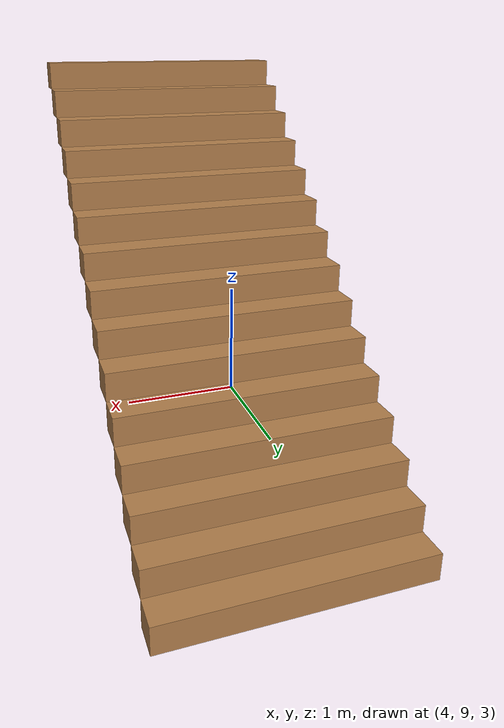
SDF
<sdf version="1.6">
 <model name="add_competition_building">
  <link name="Stairs_20">
   <visual name="Stairs_20_Visual_11">
    <pose>4.54528 9.33874 5.3 0 -0 0</pose>
    <geometry><box><size>1.85 0.217681 0.2</size></box></geometry>
    <material>
     <script><uri>file://media/materials/scripts/gazebo.material</uri><name>Gazebo/WoodPallet</name></script>
     <ambient>1 1 1 1</ambient>
     <shader type="pixel"/>
    </material>
    <meta><layer>1</layer></meta>
   </visual>
   <visual name="Stairs_20_Visual_2">
    <pose>4.54528 11.2979 3.5 0 -0 0</pose>
    <geometry><box><size>1.85 0.217681 0.2</size></box></geometry>
    <material>
     <script><uri>file://media/materials/scripts/gazebo.material</uri><name>Gazebo/WoodPallet</name></script>
     <ambient>1 1 1 1</ambient>
     <shader type="pixel"/>
    </material>
    <meta><layer>1</layer></meta>
   </visual>
   <visual name="Stairs_20_Visual_6">
    <pose>4.54528 10.4271 4.3 0 -0 0</pose>
    <geometry><box><size>1.85 0.217681 0.2</size></box></geometry>
    <material>
     <script><uri>file://media/materials/scripts/gazebo.material</uri><name>Gazebo/WoodPallet</name></script>
     <ambient>1 1 1 1</ambient>
     <shader type="pixel"/>
    </material>
    <meta><layer>1</layer></meta>
   </visual>
   <visual name="Stairs_20_Visual_4">
    <pose>4.54528 10.8625 3.9 0 -0 0</pose>
    <geometry><box><size>1.85 0.217681 0.2</size></box></geometry>
    <material>
     <script><uri>file://media/materials/scripts/gazebo.material</uri><name>Gazebo/WoodPallet</name></script>
     <ambient>1 1 1 1</ambient>
     <shader type="pixel"/>
    </material>
    <meta><layer>1</layer></meta>
   </visual>
   <visual name="Stairs_20_Visual_14">
    <pose>4.54528 8.6857 5.9 0 -0 0</pose>
    <geometry><box><size>1.85 0.217681 0.2</size></box></geometry>
    <material>
     <script><uri>file://media/materials/scripts/gazebo.material</uri><name>Gazebo/WoodPallet</name></script>
     <ambient>1 1 1 1</ambient>
     <shader type="pixel"/>
    </material>
    <meta><layer>1</layer></meta>
   </visual>
   <visual name="Stairs_20_Visual_13">
    <pose>4.54528 8.90338 5.7 0 -0 0</pose>
    <geometry><box><size>1.85 0.217681 0.2</size></box></geometry>
    <material>
     <script><uri>file://media/materials/scripts/gazebo.material</uri><name>Gazebo/WoodPallet</name></script>
     <ambient>1 1 1 1</ambient>
     <shader type="pixel"/>
    </material>
    <meta><layer>1</layer></meta>
   </visual>
   <visual name="Stairs_20_Visual_12">
    <pose>4.54528 9.12106 5.5 0 -0 0</pose>
    <geometry><box><size>1.85 0.217681 0.2</size></box></geometry>
    <material>
     <script><uri>file://media/materials/scripts/gazebo.material</uri><name>Gazebo/WoodPallet</name></script>
     <ambient>1 1 1 1</ambient>
     <shader type="pixel"/>
    </material>
    <meta><layer>1</layer></meta>
   </visual>
   <visual name="Stairs_20_Visual_5">
    <pose>4.54528 10.6448 4.1 0 -0 0</pose>
    <geometry><box><size>1.85 0.217681 0.2</size></box></geometry>
    <material>
     <script><uri>file://media/materials/scripts/gazebo.material</uri><name>Gazebo/WoodPallet</name></script>
     <ambient>1 1 1 1</ambient>
     <shader type="pixel"/>
    </material>
    <meta><layer>1</layer></meta>
   </visual>
   <visual name="Stairs_20_Visual_7">
    <pose>4.54528 10.2095 4.5 0 -0 0</pose>
    <geometry><box><size>1.85 0.217681 0.2</size></box></geometry>
    <material>
     <script><uri>file://media/materials/scripts/gazebo.material</uri><name>Gazebo/WoodPallet</name></script>
     <ambient>1 1 1 1</ambient>
     <shader type="pixel"/>
    </material>
    <meta><layer>1</layer></meta>
   </visual>
   <visual name="Stairs_20_Visual_9">
    <pose>4.54528 9.7741 4.9 0 -0 0</pose>
    <geometry><box><size>1.85 0.217681 0.2</size></box></geometry>
    <material>
     <script><uri>file://media/materials/scripts/gazebo.material</uri><name>Gazebo/WoodPallet</name></script>
     <ambient>1 1 1 1</ambient>
     <shader type="pixel"/>
    </material>
    <meta><layer>1</layer></meta>
   </visual>
   <visual name="Stairs_20_Visual_3">
    <pose>4.54528 11.0802 3.7 0 -0 0</pose>
    <geometry><box><size>1.85 0.217681 0.2</size></box></geometry>
    <material>
     <script><uri>file://media/materials/scripts/gazebo.material</uri><name>Gazebo/WoodPallet</name></script>
     <ambient>1 1 1 1</ambient>
     <shader type="pixel"/>
    </material>
    <meta><layer>1</layer></meta>
   </visual>
   <visual name="Stairs_20_Visual_10">
    <pose>4.54528 9.55642 5.1 0 -0 0</pose>
    <geometry><box><size>1.85 0.217681 0.2</size></box></geometry>
    <material>
     <script><uri>file://media/materials/scripts/gazebo.material</uri><name>Gazebo/WoodPallet</name></script>
     <ambient>1 1 1 1</ambient>
     <shader type="pixel"/>
    </material>
    <meta><layer>1</layer></meta>
   </visual>
   <visual name="Stairs_20_Visual_1">
    <pose>4.54528 11.5156 3.3 0 -0 0</pose>
    <geometry><box><size>1.85 0.217681 0.2</size></box></geometry>
    <material>
     <script><uri>file://media/materials/scripts/gazebo.material</uri><name>Gazebo/WoodPallet</name></script>
     <ambient>1 1 1 1</ambient>
     <shader type="pixel"/>
    </material>
    <meta><layer>1</layer></meta>
   </visual>
   <visual name="Stairs_20_Visual_8">
    <pose>4.54528 9.99178 4.7 0 -0 0</pose>
    <geometry><box><size>1.85 0.217681 0.2</size></box></geometry>
    <material>
     <script><uri>file://media/materials/scripts/gazebo.material</uri><name>Gazebo/WoodPallet</name></script>
     <ambient>1 1 1 1</ambient>
     <shader type="pixel"/>
    </material>
    <meta><layer>1</layer></meta>
   </visual>
   <visual name="Stairs_20_Visual_0">
    <pose>4.54528 11.7332 3.1 0 -0 0</pose>
    <geometry><box><size>1.85 0.217681 0.2</size></box></geometry>
    <material>
     <script><uri>file://media/materials/scripts/gazebo.material</uri><name>Gazebo/WoodPallet</name></script>
     <ambient>1 1 1 1</ambient>
     <shader type="pixel"/>
    </material>
    <meta><layer>1</layer></meta>
   </visual>
   <collision name="Stairs_20_Collision_6">
    <pose>4.54528 10.4271 4.3 0 -0 0</pose>
    <geometry><box><size>1.85 0.217681 0.2</size></box></geometry>
    <surface>
     <friction>
      <ode><mu>1</mu><mu2>1</mu2><fdir1>0 0 0</fdir1><slip1>0</slip1><slip2>0</slip2></ode>
      <torsional>
       <coefficient>1</coefficient>
       <patch_radius>0</patch_radius>
       <surface_radius>0</surface_radius>
       <use_patch_radius>1</use_patch_radius>
       <ode><slip>0</slip></ode>
      </torsional>
     </friction>
     <bounce><restitution_coefficient>0</restitution_coefficient><threshold>1e+06</threshold></bounce>
     <contact>
      <collide_without_contact>0</collide_without_contact>
      <collide_without_contact_bitmask>1</collide_without_contact_bitmask>
      <collide_bitmask>1</collide_bitmask>
      <ode>
       <soft_cfm>0</soft_cfm>
       <soft_erp>0.2</soft_erp>
       <kp>1e+13</kp>
       <kd>1</kd>
       <max_vel>0.01</max_vel>
       <min_depth>0</min_depth>
      </ode>
      <bullet>
       <split_impulse>1</split_impulse>
       <split_impulse_penetration_threshold>-0.01</split_impulse_penetration_threshold>
       <soft_cfm>0</soft_cfm>
       <soft_erp>0.2</soft_erp>
       <kp>1e+13</kp>
       <kd>1</kd>
      </bullet>
     </contact>
    </surface>
   </collision>
   <collision name="Stairs_20_Collision_12">
    <pose>4.54528 9.12106 5.5 0 -0 0</pose>
    <geometry><box><size>1.85 0.217681 0.2</size></box></geometry>
    <surface>
     <friction>
      <ode><mu>1</mu><mu2>1</mu2><fdir1>0 0 0</fdir1><slip1>0</slip1><slip2>0</slip2></ode>
      <torsional>
       <coefficient>1</coefficient>
       <patch_radius>0</patch_radius>
       <surface_radius>0</surface_radius>
       <use_patch_radius>1</use_patch_radius>
       <ode><slip>0</slip></ode>
      </torsional>
     </friction>
     <bounce><restitution_coefficient>0</restitution_coefficient><threshold>1e+06</threshold></bounce>
     <contact>
      <collide_without_contact>0</collide_without_contact>
      <collide_without_contact_bitmask>1</collide_without_contact_bitmask>
      <collide_bitmask>1</collide_bitmask>
      <ode>
       <soft_cfm>0</soft_cfm>
       <soft_erp>0.2</soft_erp>
       <kp>1e+13</kp>
       <kd>1</kd>
       <max_vel>0.01</max_vel>
       <min_depth>0</min_depth>
      </ode>
      <bullet>
       <split_impulse>1</split_impulse>
       <split_impulse_penetration_threshold>-0.01</split_impulse_penetration_threshold>
       <soft_cfm>0</soft_cfm>
       <soft_erp>0.2</soft_erp>
       <kp>1e+13</kp>
       <kd>1</kd>
      </bullet>
     </contact>
    </surface>
   </collision>
   <collision name="Stairs_20_Collision_13">
    <pose>4.54528 8.90338 5.7 0 -0 0</pose>
    <geometry><box><size>1.85 0.217681 0.2</size></box></geometry>
    <surface>
     <friction>
      <ode><mu>1</mu><mu2>1</mu2><fdir1>0 0 0</fdir1><slip1>0</slip1><slip2>0</slip2></ode>
      <torsional>
       <coefficient>1</coefficient>
       <patch_radius>0</patch_radius>
       <surface_radius>0</surface_radius>
       <use_patch_radius>1</use_patch_radius>
       <ode><slip>0</slip></ode>
      </torsional>
     </friction>
     <bounce><restitution_coefficient>0</restitution_coefficient><threshold>1e+06</threshold></bounce>
     <contact>
      <collide_without_contact>0</collide_without_contact>
      <collide_without_contact_bitmask>1</collide_without_contact_bitmask>
      <collide_bitmask>1</collide_bitmask>
      <ode>
       <soft_cfm>0</soft_cfm>
       <soft_erp>0.2</soft_erp>
       <kp>1e+13</kp>
       <kd>1</kd>
       <max_vel>0.01</max_vel>
       <min_depth>0</min_depth>
      </ode>
      <bullet>
       <split_impulse>1</split_impulse>
       <split_impulse_penetration_threshold>-0.01</split_impulse_penetration_threshold>
       <soft_cfm>0</soft_cfm>
       <soft_erp>0.2</soft_erp>
       <kp>1e+13</kp>
       <kd>1</kd>
      </bullet>
     </contact>
    </surface>
   </collision>
   <collision name="Stairs_20_Collision_14">
    <pose>4.54528 8.6857 5.9 0 -0 0</pose>
    <geometry><box><size>1.85 0.217681 0.2</size></box></geometry>
    <surface>
     <friction>
      <ode><mu>1</mu><mu2>1</mu2><fdir1>0 0 0</fdir1><slip1>0</slip1><slip2>0</slip2></ode>
      <torsional>
       <coefficient>1</coefficient>
       <patch_radius>0</patch_radius>
       <surface_radius>0</surface_radius>
       <use_patch_radius>1</use_patch_radius>
       <ode><slip>0</slip></ode>
      </torsional>
     </friction>
     <bounce><restitution_coefficient>0</restitution_coefficient><threshold>1e+06</threshold></bounce>
     <contact>
      <collide_without_contact>0</collide_without_contact>
      <collide_without_contact_bitmask>1</collide_without_contact_bitmask>
      <collide_bitmask>1</collide_bitmask>
      <ode>
       <soft_cfm>0</soft_cfm>
       <soft_erp>0.2</soft_erp>
       <kp>1e+13</kp>
       <kd>1</kd>
       <max_vel>0.01</max_vel>
       <min_depth>0</min_depth>
      </ode>
      <bullet>
       <split_impulse>1</split_impulse>
       <split_impulse_penetration_threshold>-0.01</split_impulse_penetration_threshold>
       <soft_cfm>0</soft_cfm>
       <soft_erp>0.2</soft_erp>
       <kp>1e+13</kp>
       <kd>1</kd>
      </bullet>
     </contact>
    </surface>
   </collision>
   <collision name="Stairs_20_Collision_9">
    <pose>4.54528 9.7741 4.9 0 -0 0</pose>
    <geometry><box><size>1.85 0.217681 0.2</size></box></geometry>
    <surface>
     <friction>
      <ode><mu>1</mu><mu2>1</mu2><fdir1>0 0 0</fdir1><slip1>0</slip1><slip2>0</slip2></ode>
      <torsional>
       <coefficient>1</coefficient>
       <patch_radius>0</patch_radius>
       <surface_radius>0</surface_radius>
       <use_patch_radius>1</use_patch_radius>
       <ode><slip>0</slip></ode>
      </torsional>
     </friction>
     <bounce><restitution_coefficient>0</restitution_coefficient><threshold>1e+06</threshold></bounce>
     <contact>
      <collide_without_contact>0</collide_without_contact>
      <collide_without_contact_bitmask>1</collide_without_contact_bitmask>
      <collide_bitmask>1</collide_bitmask>
      <ode>
       <soft_cfm>0</soft_cfm>
       <soft_erp>0.2</soft_erp>
       <kp>1e+13</kp>
       <kd>1</kd>
       <max_vel>0.01</max_vel>
       <min_depth>0</min_depth>
      </ode>
      <bullet>
       <split_impulse>1</split_impulse>
       <split_impulse_penetration_threshold>-0.01</split_impulse_penetration_threshold>
       <soft_cfm>0</soft_cfm>
       <soft_erp>0.2</soft_erp>
       <kp>1e+13</kp>
       <kd>1</kd>
      </bullet>
     </contact>
    </surface>
   </collision>
   <collision name="Stairs_20_Collision_0">
    <pose>4.54528 11.7332 3.1 0 -0 0</pose>
    <geometry><box><size>1.85 0.217681 0.2</size></box></geometry>
    <surface>
     <friction>
      <ode><mu>1</mu><mu2>1</mu2><fdir1>0 0 0</fdir1><slip1>0</slip1><slip2>0</slip2></ode>
      <torsional>
       <coefficient>1</coefficient>
       <patch_radius>0</patch_radius>
       <surface_radius>0</surface_radius>
       <use_patch_radius>1</use_patch_radius>
       <ode><slip>0</slip></ode>
      </torsional>
     </friction>
     <bounce><restitution_coefficient>0</restitution_coefficient><threshold>1e+06</threshold></bounce>
     <contact>
      <collide_without_contact>0</collide_without_contact>
      <collide_without_contact_bitmask>1</collide_without_contact_bitmask>
      <collide_bitmask>1</collide_bitmask>
      <ode>
       <soft_cfm>0</soft_cfm>
       <soft_erp>0.2</soft_erp>
       <kp>1e+13</kp>
       <kd>1</kd>
       <max_vel>0.01</max_vel>
       <min_depth>0</min_depth>
      </ode>
      <bullet>
       <split_impulse>1</split_impulse>
       <split_impulse_penetration_threshold>-0.01</split_impulse_penetration_threshold>
       <soft_cfm>0</soft_cfm>
       <soft_erp>0.2</soft_erp>
       <kp>1e+13</kp>
       <kd>1</kd>
      </bullet>
     </contact>
    </surface>
   </collision>
   <collision name="Stairs_20_Collision_2">
    <pose>4.54528 11.2979 3.5 0 -0 0</pose>
    <geometry><box><size>1.85 0.217681 0.2</size></box></geometry>
    <surface>
     <friction>
      <ode><mu>1</mu><mu2>1</mu2><fdir1>0 0 0</fdir1><slip1>0</slip1><slip2>0</slip2></ode>
      <torsional>
       <coefficient>1</coefficient>
       <patch_radius>0</patch_radius>
       <surface_radius>0</surface_radius>
       <use_patch_radius>1</use_patch_radius>
       <ode><slip>0</slip></ode>
      </torsional>
     </friction>
     <bounce><restitution_coefficient>0</restitution_coefficient><threshold>1e+06</threshold></bounce>
     <contact>
      <collide_without_contact>0</collide_without_contact>
      <collide_without_contact_bitmask>1</collide_without_contact_bitmask>
      <collide_bitmask>1</collide_bitmask>
      <ode>
       <soft_cfm>0</soft_cfm>
       <soft_erp>0.2</soft_erp>
       <kp>1e+13</kp>
       <kd>1</kd>
       <max_vel>0.01</max_vel>
       <min_depth>0</min_depth>
      </ode>
      <bullet>
       <split_impulse>1</split_impulse>
       <split_impulse_penetration_threshold>-0.01</split_impulse_penetration_threshold>
       <soft_cfm>0</soft_cfm>
       <soft_erp>0.2</soft_erp>
       <kp>1e+13</kp>
       <kd>1</kd>
      </bullet>
     </contact>
    </surface>
   </collision>
   <collision name="Stairs_20_Collision_10">
    <pose>4.54528 9.55642 5.1 0 -0 0</pose>
    <geometry><box><size>1.85 0.217681 0.2</size></box></geometry>
    <surface>
     <friction>
      <ode><mu>1</mu><mu2>1</mu2><fdir1>0 0 0</fdir1><slip1>0</slip1><slip2>0</slip2></ode>
      <torsional>
       <coefficient>1</coefficient>
       <patch_radius>0</patch_radius>
       <surface_radius>0</surface_radius>
       <use_patch_radius>1</use_patch_radius>
       <ode><slip>0</slip></ode>
      </torsional>
     </friction>
     <bounce><restitution_coefficient>0</restitution_coefficient><threshold>1e+06</threshold></bounce>
     <contact>
      <collide_without_contact>0</collide_without_contact>
      <collide_without_contact_bitmask>1</collide_without_contact_bitmask>
      <collide_bitmask>1</collide_bitmask>
      <ode>
       <soft_cfm>0</soft_cfm>
       <soft_erp>0.2</soft_erp>
       <kp>1e+13</kp>
       <kd>1</kd>
       <max_vel>0.01</max_vel>
       <min_depth>0</min_depth>
      </ode>
      <bullet>
       <split_impulse>1</split_impulse>
       <split_impulse_penetration_threshold>-0.01</split_impulse_penetration_threshold>
       <soft_cfm>0</soft_cfm>
       <soft_erp>0.2</soft_erp>
       <kp>1e+13</kp>
       <kd>1</kd>
      </bullet>
     </contact>
    </surface>
   </collision>
   <collision name="Stairs_20_Collision_11">
    <pose>4.54528 9.33874 5.3 0 -0 0</pose>
    <geometry><box><size>1.85 0.217681 0.2</size></box></geometry>
    <surface>
     <friction>
      <ode><mu>1</mu><mu2>1</mu2><fdir1>0 0 0</fdir1><slip1>0</slip1><slip2>0</slip2></ode>
      <torsional>
       <coefficient>1</coefficient>
       <patch_radius>0</patch_radius>
       <surface_radius>0</surface_radius>
       <use_patch_radius>1</use_patch_radius>
       <ode><slip>0</slip></ode>
      </torsional>
     </friction>
     <bounce><restitution_coefficient>0</restitution_coefficient><threshold>1e+06</threshold></bounce>
     <contact>
      <collide_without_contact>0</collide_without_contact>
      <collide_without_contact_bitmask>1</collide_without_contact_bitmask>
      <collide_bitmask>1</collide_bitmask>
      <ode>
       <soft_cfm>0</soft_cfm>
       <soft_erp>0.2</soft_erp>
       <kp>1e+13</kp>
       <kd>1</kd>
       <max_vel>0.01</max_vel>
       <min_depth>0</min_depth>
      </ode>
      <bullet>
       <split_impulse>1</split_impulse>
       <split_impulse_penetration_threshold>-0.01</split_impulse_penetration_threshold>
       <soft_cfm>0</soft_cfm>
       <soft_erp>0.2</soft_erp>
       <kp>1e+13</kp>
       <kd>1</kd>
      </bullet>
     </contact>
    </surface>
   </collision>
   <collision name="Stairs_20_Collision_8">
    <pose>4.54528 9.99178 4.7 0 -0 0</pose>
    <geometry><box><size>1.85 0.217681 0.2</size></box></geometry>
    <surface>
     <friction>
      <ode><mu>1</mu><mu2>1</mu2><fdir1>0 0 0</fdir1><slip1>0</slip1><slip2>0</slip2></ode>
      <torsional>
       <coefficient>1</coefficient>
       <patch_radius>0</patch_radius>
       <surface_radius>0</surface_radius>
       <use_patch_radius>1</use_patch_radius>
       <ode><slip>0</slip></ode>
      </torsional>
     </friction>
     <bounce><restitution_coefficient>0</restitution_coefficient><threshold>1e+06</threshold></bounce>
     <contact>
      <collide_without_contact>0</collide_without_contact>
      <collide_without_contact_bitmask>1</collide_without_contact_bitmask>
      <collide_bitmask>1</collide_bitmask>
      <ode>
       <soft_cfm>0</soft_cfm>
       <soft_erp>0.2</soft_erp>
       <kp>1e+13</kp>
       <kd>1</kd>
       <max_vel>0.01</max_vel>
       <min_depth>0</min_depth>
      </ode>
      <bullet>
       <split_impulse>1</split_impulse>
       <split_impulse_penetration_threshold>-0.01</split_impulse_penetration_threshold>
       <soft_cfm>0</soft_cfm>
       <soft_erp>0.2</soft_erp>
       <kp>1e+13</kp>
       <kd>1</kd>
      </bullet>
     </contact>
    </surface>
   </collision>
   <collision name="Stairs_20_Collision_1">
    <pose>4.54528 11.5156 3.3 0 -0 0</pose>
    <geometry><box><size>1.85 0.217681 0.2</size></box></geometry>
    <surface>
     <friction>
      <ode><mu>1</mu><mu2>1</mu2><fdir1>0 0 0</fdir1><slip1>0</slip1><slip2>0</slip2></ode>
      <torsional>
       <coefficient>1</coefficient>
       <patch_radius>0</patch_radius>
       <surface_radius>0</surface_radius>
       <use_patch_radius>1</use_patch_radius>
       <ode><slip>0</slip></ode>
      </torsional>
     </friction>
     <bounce><restitution_coefficient>0</restitution_coefficient><threshold>1e+06</threshold></bounce>
     <contact>
      <collide_without_contact>0</collide_without_contact>
      <collide_without_contact_bitmask>1</collide_without_contact_bitmask>
      <collide_bitmask>1</collide_bitmask>
      <ode>
       <soft_cfm>0</soft_cfm>
       <soft_erp>0.2</soft_erp>
       <kp>1e+13</kp>
       <kd>1</kd>
       <max_vel>0.01</max_vel>
       <min_depth>0</min_depth>
      </ode>
      <bullet>
       <split_impulse>1</split_impulse>
       <split_impulse_penetration_threshold>-0.01</split_impulse_penetration_threshold>
       <soft_cfm>0</soft_cfm>
       <soft_erp>0.2</soft_erp>
       <kp>1e+13</kp>
       <kd>1</kd>
      </bullet>
     </contact>
    </surface>
   </collision>
   <collision name="Stairs_20_Collision_5">
    <pose>4.54528 10.6448 4.1 0 -0 0</pose>
    <geometry><box><size>1.85 0.217681 0.2</size></box></geometry>
    <surface>
     <friction>
      <ode><mu>1</mu><mu2>1</mu2><fdir1>0 0 0</fdir1><slip1>0</slip1><slip2>0</slip2></ode>
      <torsional>
       <coefficient>1</coefficient>
       <patch_radius>0</patch_radius>
       <surface_radius>0</surface_radius>
       <use_patch_radius>1</use_patch_radius>
       <ode><slip>0</slip></ode>
      </torsional>
     </friction>
     <bounce><restitution_coefficient>0</restitution_coefficient><threshold>1e+06</threshold></bounce>
     <contact>
      <collide_without_contact>0</collide_without_contact>
      <collide_without_contact_bitmask>1</collide_without_contact_bitmask>
      <collide_bitmask>1</collide_bitmask>
      <ode>
       <soft_cfm>0</soft_cfm>
       <soft_erp>0.2</soft_erp>
       <kp>1e+13</kp>
       <kd>1</kd>
       <max_vel>0.01</max_vel>
       <min_depth>0</min_depth>
      </ode>
      <bullet>
       <split_impulse>1</split_impulse>
       <split_impulse_penetration_threshold>-0.01</split_impulse_penetration_threshold>
       <soft_cfm>0</soft_cfm>
       <soft_erp>0.2</soft_erp>
       <kp>1e+13</kp>
       <kd>1</kd>
      </bullet>
     </contact>
    </surface>
   </collision>
   <collision name="Stairs_20_Collision_7">
    <pose>4.54528 10.2095 4.5 0 -0 0</pose>
    <geometry><box><size>1.85 0.217681 0.2</size></box></geometry>
    <surface>
     <friction>
      <ode><mu>1</mu><mu2>1</mu2><fdir1>0 0 0</fdir1><slip1>0</slip1><slip2>0</slip2></ode>
      <torsional>
       <coefficient>1</coefficient>
       <patch_radius>0</patch_radius>
       <surface_radius>0</surface_radius>
       <use_patch_radius>1</use_patch_radius>
       <ode><slip>0</slip></ode>
      </torsional>
     </friction>
     <bounce><restitution_coefficient>0</restitution_coefficient><threshold>1e+06</threshold></bounce>
     <contact>
      <collide_without_contact>0</collide_without_contact>
      <collide_without_contact_bitmask>1</collide_without_contact_bitmask>
      <collide_bitmask>1</collide_bitmask>
      <ode>
       <soft_cfm>0</soft_cfm>
       <soft_erp>0.2</soft_erp>
       <kp>1e+13</kp>
       <kd>1</kd>
       <max_vel>0.01</max_vel>
       <min_depth>0</min_depth>
      </ode>
      <bullet>
       <split_impulse>1</split_impulse>
       <split_impulse_penetration_threshold>-0.01</split_impulse_penetration_threshold>
       <soft_cfm>0</soft_cfm>
       <soft_erp>0.2</soft_erp>
       <kp>1e+13</kp>
       <kd>1</kd>
      </bullet>
     </contact>
    </surface>
   </collision>
   <collision name="Stairs_20_Collision_3">
    <pose>4.54528 11.0802 3.7 0 -0 0</pose>
    <geometry><box><size>1.85 0.217681 0.2</size></box></geometry>
    <surface>
     <friction>
      <ode><mu>1</mu><mu2>1</mu2><fdir1>0 0 0</fdir1><slip1>0</slip1><slip2>0</slip2></ode>
      <torsional>
       <coefficient>1</coefficient>
       <patch_radius>0</patch_radius>
       <surface_radius>0</surface_radius>
       <use_patch_radius>1</use_patch_radius>
       <ode><slip>0</slip></ode>
      </torsional>
     </friction>
     <bounce><restitution_coefficient>0</restitution_coefficient><threshold>1e+06</threshold></bounce>
     <contact>
      <collide_without_contact>0</collide_without_contact>
      <collide_without_contact_bitmask>1</collide_without_contact_bitmask>
      <collide_bitmask>1</collide_bitmask>
      <ode>
       <soft_cfm>0</soft_cfm>
       <soft_erp>0.2</soft_erp>
       <kp>1e+13</kp>
       <kd>1</kd>
       <max_vel>0.01</max_vel>
       <min_depth>0</min_depth>
      </ode>
      <bullet>
       <split_impulse>1</split_impulse>
       <split_impulse_penetration_threshold>-0.01</split_impulse_penetration_threshold>
       <soft_cfm>0</soft_cfm>
       <soft_erp>0.2</soft_erp>
       <kp>1e+13</kp>
       <kd>1</kd>
      </bullet>
     </contact>
    </surface>
   </collision>
   <collision name="Stairs_20_Collision_4">
    <pose>4.54528 10.8625 3.9 0 -0 0</pose>
    <geometry><box><size>1.85 0.217681 0.2</size></box></geometry>
    <surface>
     <friction>
      <ode><mu>1</mu><mu2>1</mu2><fdir1>0 0 0</fdir1><slip1>0</slip1><slip2>0</slip2></ode>
      <torsional>
       <coefficient>1</coefficient>
       <patch_radius>0</patch_radius>
       <surface_radius>0</surface_radius>
       <use_patch_radius>1</use_patch_radius>
       <ode><slip>0</slip></ode>
      </torsional>
     </friction>
     <bounce><restitution_coefficient>0</restitution_coefficient><threshold>1e+06</threshold></bounce>
     <contact>
      <collide_without_contact>0</collide_without_contact>
      <collide_without_contact_bitmask>1</collide_without_contact_bitmask>
      <collide_bitmask>1</collide_bitmask>
      <ode>
       <soft_cfm>0</soft_cfm>
       <soft_erp>0.2</soft_erp>
       <kp>1e+13</kp>
       <kd>1</kd>
       <max_vel>0.01</max_vel>
       <min_depth>0</min_depth>
      </ode>
      <bullet>
       <split_impulse>1</split_impulse>
       <split_impulse_penetration_threshold>-0.01</split_impulse_penetration_threshold>
       <soft_cfm>0</soft_cfm>
       <soft_erp>0.2</soft_erp>
       <kp>1e+13</kp>
       <kd>1</kd>
      </bullet>
     </contact>
    </surface>
   </collision>
  </link>
  <static>1</static>
 </model>
</sdf>
